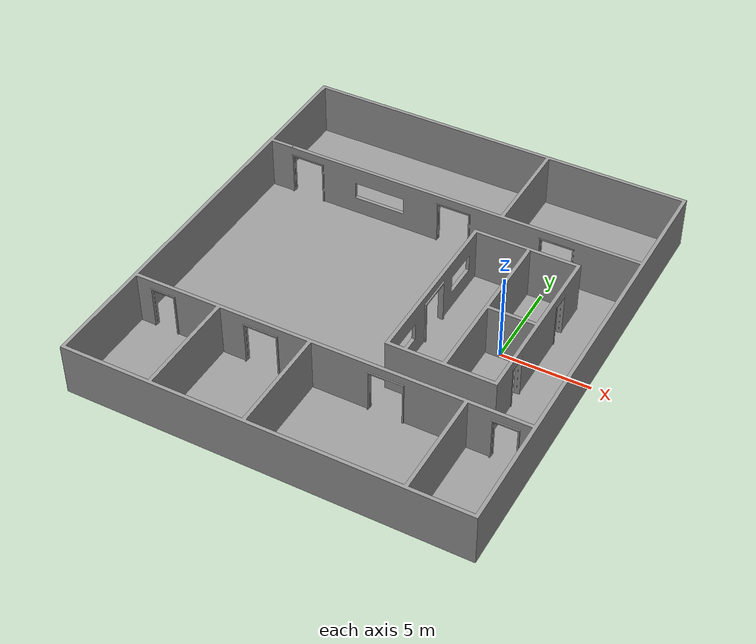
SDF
<?xml version="1.0" ?>
<sdf version='1.7'>
  <world name='default'>

    <!-- 光照设置 -->
    <light name='sun' type='directional'>
      <cast_shadows>1</cast_shadows>
      <pose>0 0 10 0 -0 0</pose>
      <diffuse>0.8 0.8 0.8 1</diffuse>
      <specular>0.2 0.2 0.2 1</specular>
      <attenuation>
        <range>1000</range>
        <constant>0.9</constant>
        <linear>0.01</linear>
        <quadratic>0.001</quadratic>
      </attenuation>
      <direction>-0.5 0.1 -0.9</direction>
      <spot>
        <inner_angle>0</inner_angle>
        <outer_angle>0</outer_angle>
        <falloff>0</falloff>
      </spot>
    </light>

    <!-- 医院地板 -->
    <model name='hospital_floor'>
      <pose>0 0 0 0 -0 0</pose>
      <static>1</static>
      <link name='body'>
        <visual name='visual'>
          <geometry>
            <mesh>
              <uri>model://hospital_floor_small/media/hospital_floor.dae</uri>
            </mesh>
          </geometry>
          <material>
            <script>
              <uri>model://hospital_floor_small/media/scripts</uri>
              <uri>model://hospital_floor_small/media/Textures</uri>
              <name>grey_floor</name>
            </script>
          </material>
        </visual>
        <collision name='collision'>
          <geometry>
            <mesh>
              <uri>model://hospital_floor_small/media/hospital_floor.dae</uri>
            </mesh>
          </geometry>
          <max_contacts>10</max_contacts>
          <surface>
            <contact>
              <ode/>
            </contact>
            <bounce/>
            <friction>
              <torsional>
                <ode/>
              </torsional>
              <ode/>
            </friction>
          </surface>
        </collision>
        <self_collide>0</self_collide>
        <enable_wind>0</enable_wind>
        <kinematic>0</kinematic>
      </link>
    </model>

    <!-- 医院墙壁 -->
    <model name='terrain_1'>
      <pose>0 0 0 0 -0 0</pose>
      <static>1</static>
      <link name='body'>
        <visual name='visual'>
          <geometry>
            <mesh>
              <uri>model://hospital_walls_small/media/hospital_walls.dae</uri>
            </mesh>
          </geometry>
          <material>
            <script>
              <uri>model://hospital_walls_small/media/scripts</uri>
              <uri>model://hospital_walls_small/media/Textures</uri>
              <name>grey_walls</name>
            </script>
          </material>
        </visual>
        <collision name='collision'>
          <geometry>
            <mesh>
              <uri>model://hospital_walls_small/media/hospital_walls.dae</uri>
            </mesh>
          </geometry>
          <max_contacts>10</max_contacts>
          <surface>
            <contact>
              <ode/>
            </contact>
            <bounce/>
            <friction>
              <torsional>
                <ode/>
              </torsional>
              <ode/>
            </friction>
          </surface>
        </collision>
        <self_collide>0</self_collide>
        <enable_wind>0</enable_wind>
        <kinematic>0</kinematic>
      </link>
    </model>

  </world>
</sdf>
